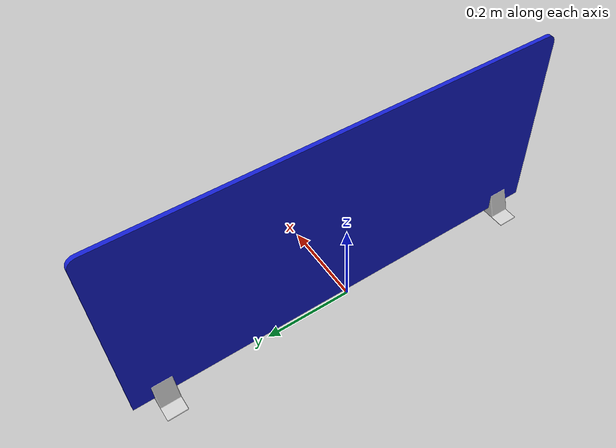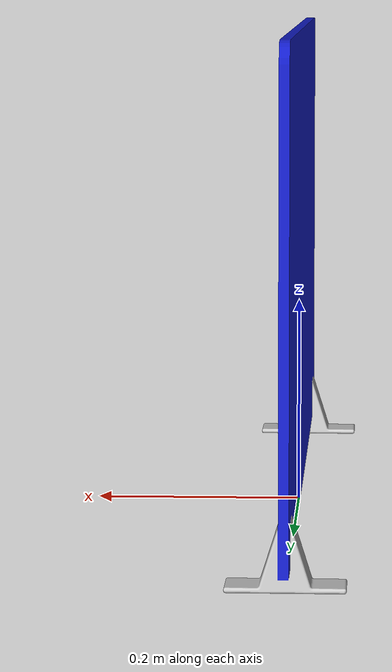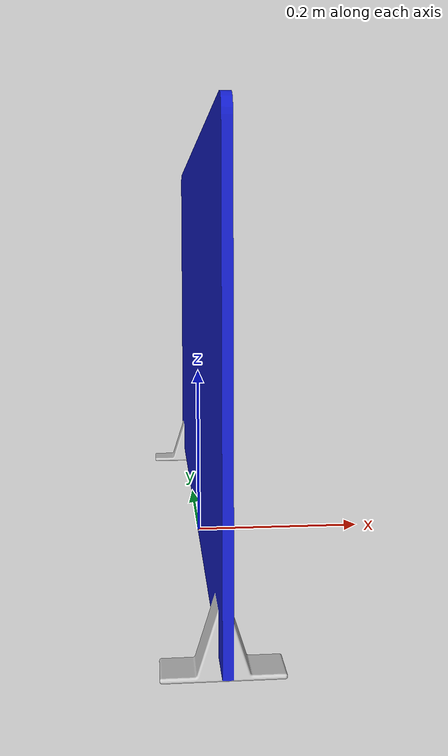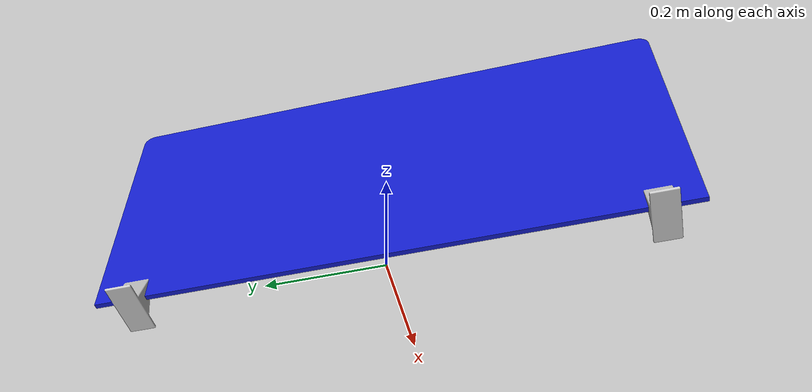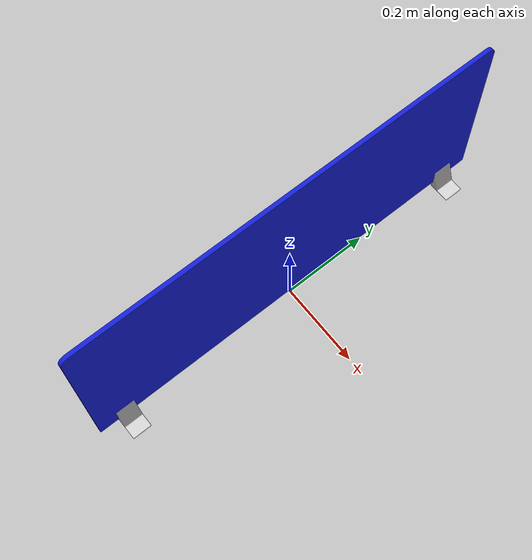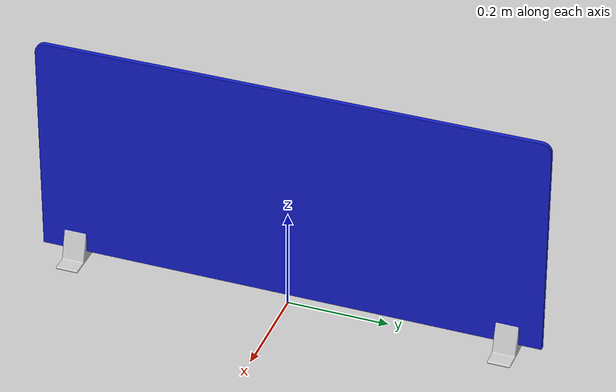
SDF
<?xml version="1.0" ?>

<sdf version="1.5">
  <model name="rgiro_sanwa_partition">
    <static>1</static>
    <link name="link">
      <visual name="visual">
        <geometry>
          <mesh>
            <uri>model://rgiro_sanwa_partition/meshes/rgiro_sanwa_partition.dae</uri>
          </mesh>
        </geometry>
      </visual>
      <collision name="collision">
        <geometry>
          <mesh>
            <uri>model://rgiro_sanwa_partition/meshes/rgiro_sanwa_partition.dae</uri>
          </mesh>
        </geometry>
      </collision>
    </link>
  </model>
</sdf>
